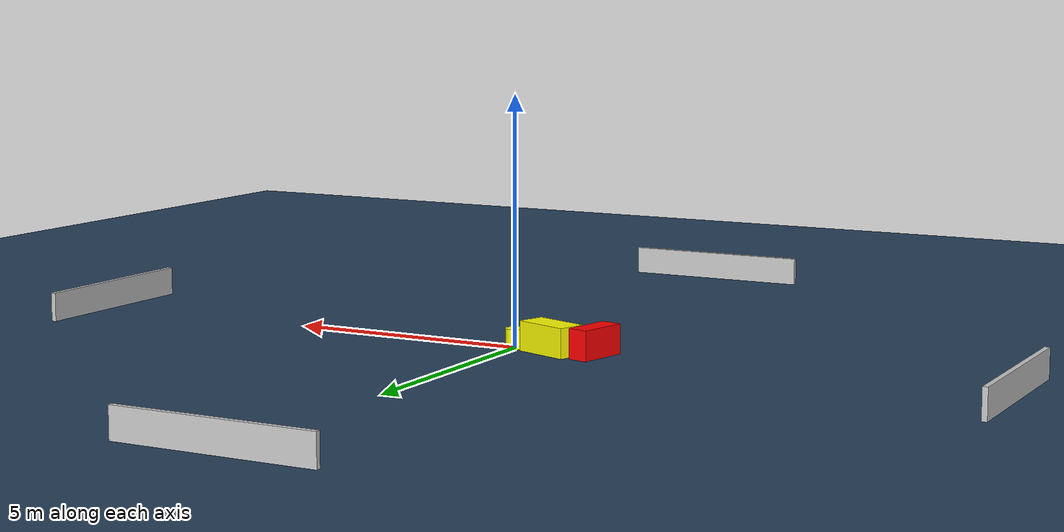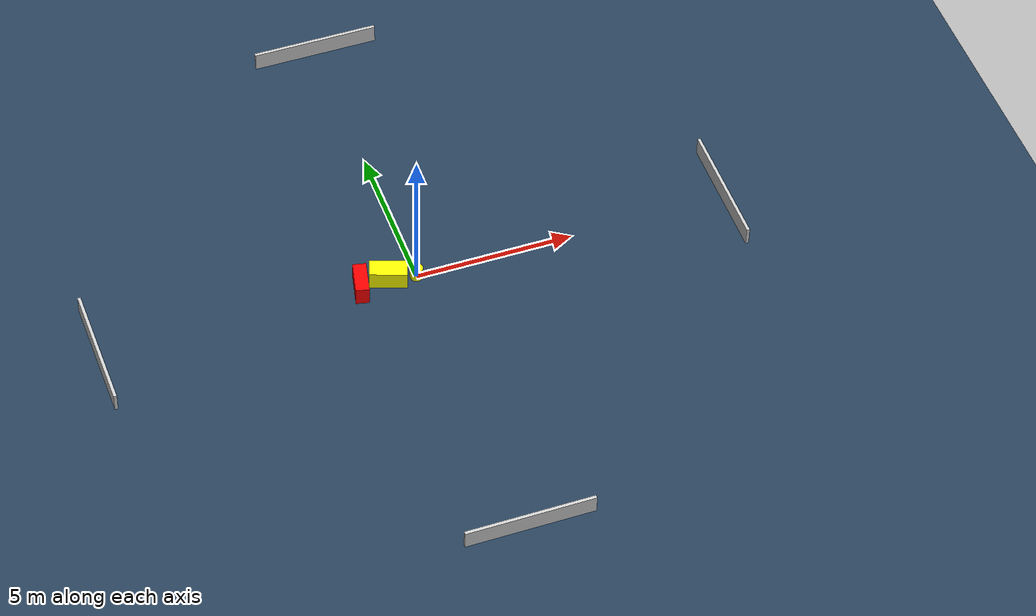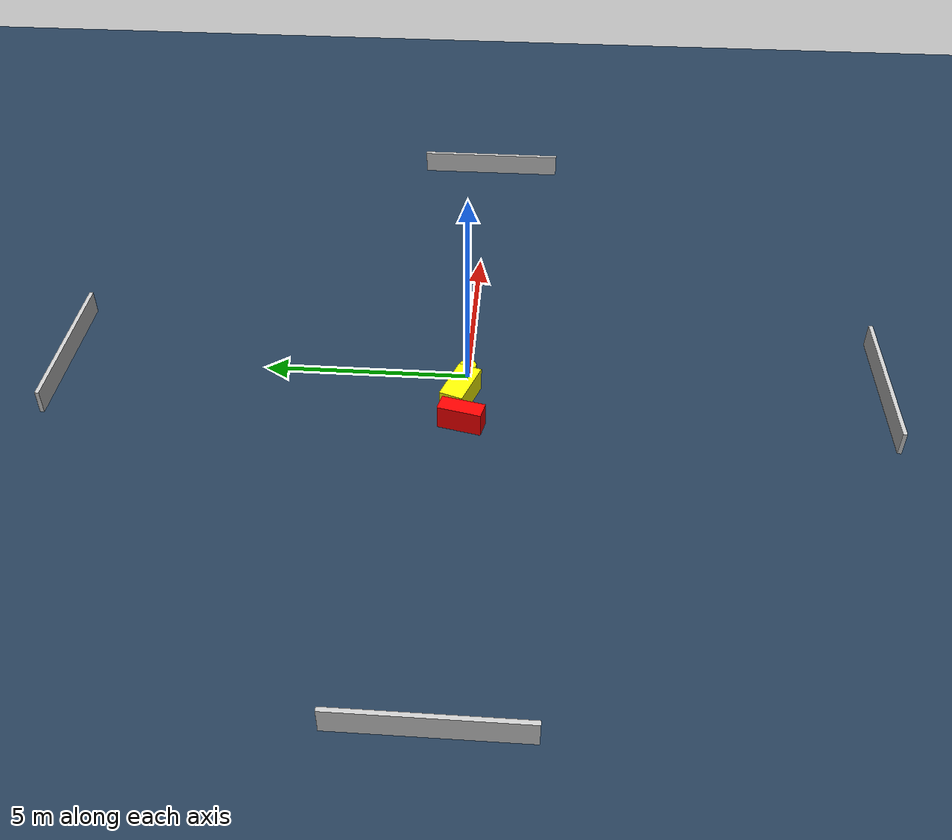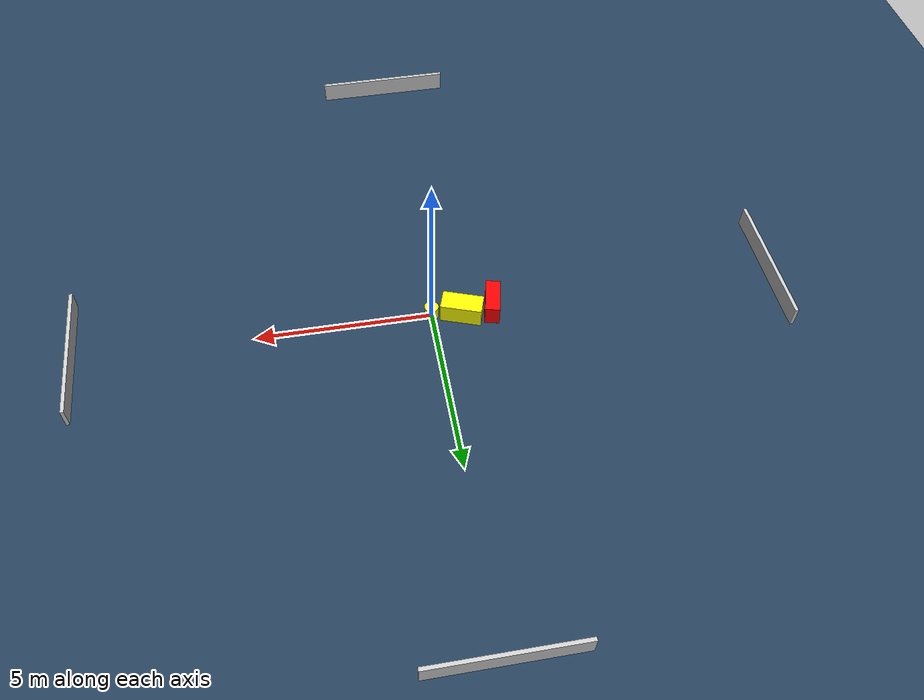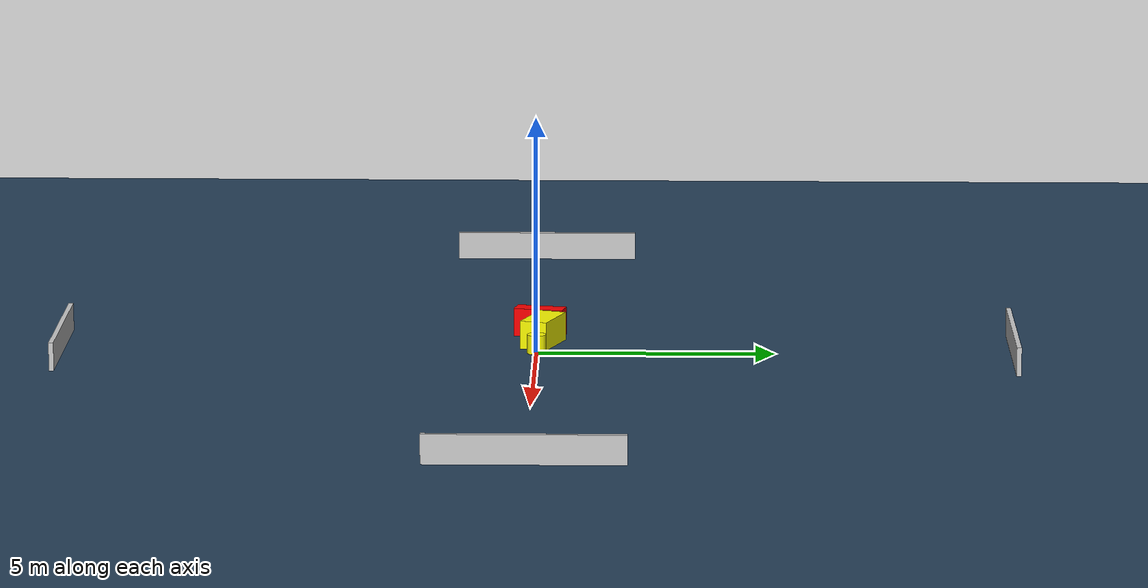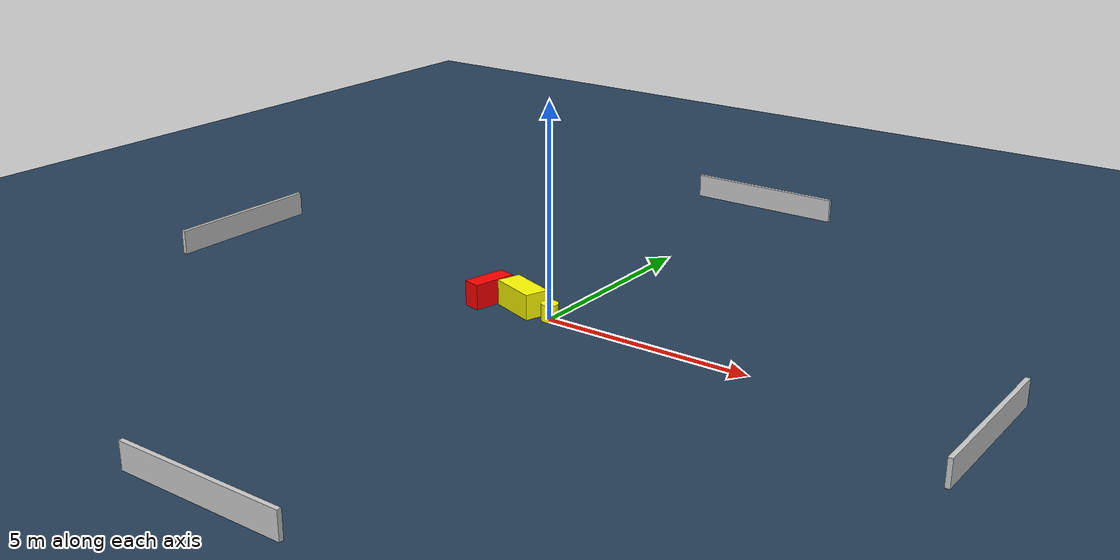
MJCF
<?xml version="1.0" ?>
<mujoco model="generated_environment">
  <option timestep="0.01" integrator="RK4" cone="elliptic"/>
  <default>
    <geom density="1"/>
  </default>
  <asset>
    <texture builtin="gradient" height="3072" name="skybox" rgb1="0.3 0.5 0.7" rgb2="0 0 0" type="skybox" width="512"/>
    <texture builtin="checker" height="300" name="groundplane" rgb1="0.2 0.3 0.4" rgb2="0.1 0.2 0.3" type="2d" width="300"/>
    <material name="groundplane" reflectance="0.2" texrepeat="5 5" texture="groundplane"/>
  </asset>
  <worldbody>
    <light dir="0 0 -1" directional="true" pos="0 0 1.5"/>
    <geom condim="3" friction="0.5 0.005 0.001" material="groundplane" name="floor" pos="0 0 0" size="0 0 0.05" type="plane"/>
    <body name="walls">
      <geom name="wall_1" condim="4" pos="-10.0 0.0 0.3" rgba="0.800000011920929 0.800000011920929 0.800000011920929 1.0" size="0.05 2.0 0.3" type="box"/>
      <geom name="wall_2" condim="4" pos="10.0 0.0 0.3" rgba="0.800000011920929 0.800000011920929 0.800000011920929 1.0" size="0.05 2.0 0.3" type="box"/>
      <geom name="wall_3" condim="4" pos="0.0 -10.0 0.3" rgba="0.800000011920929 0.800000011920929 0.800000011920929 1.0" size="2.0 0.05 0.3" type="box"/>
      <geom name="wall_4" condim="4" pos="0.0 10.0 0.3" rgba="0.800000011920929 0.800000011920929 0.800000011920929 1.0" size="2.0 0.05 0.3" type="box"/>
    </body>
    <body name="robot">
      <joint name="joint_x" type="slide" pos="0 0 0" axis="1 0 0"/>
      <joint name="joint_y" type="slide" pos="0 0 0" axis="0 1 0"/>
      <geom name="robot" type="cylinder" pos="0.0 0.0 0.2" size="0.2 0.2 0.0" mass="5.0" friction="1.0 0.005 0.0001" condim="4" rgba="1.0 1.0 0.0 1.0"/>
    </body>
    <body name="obstacle_1_movable">
      <geom name="obstacle_1_movable" condim="4" pos="-0.8548237926218555 0.12000157141629385 0.3" euler="0 0 160.5687731383788" friction="0.0 0.005 0.001" rgba="1.0 1.0 0.0 1.0" size="0.5852703611830259 0.2907721319302888 0.3" type="box" mass="0.1"/>
      <joint type="free"/>
    </body>
    <body name="obstacle_2_static">
      <geom name="obstacle_2_static" condim="4" pos="-1.7557101609436943 0.034142925192288225 0.3" euler="0 0 77.15664853189945" friction="0.0 0.005 0.001" rgba="1.0 0.0 0.0 1.0" size="0.5260949544405173 0.21095245887883596 0.3" type="box"/>
    </body>
  </worldbody>
  <actuator>
    <motor name="actuator_x" joint="joint_x" gear="1" ctrlrange="-1 1"/>
    <motor name="actuator_y" joint="joint_y" gear="1" ctrlrange="-1 1"/>
  </actuator>
</mujoco>
